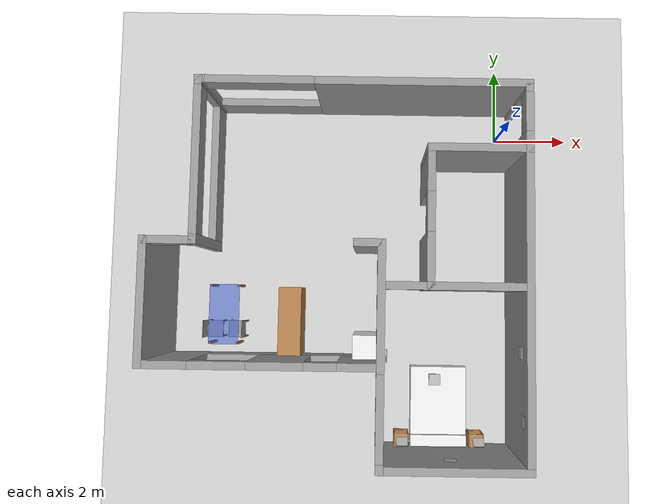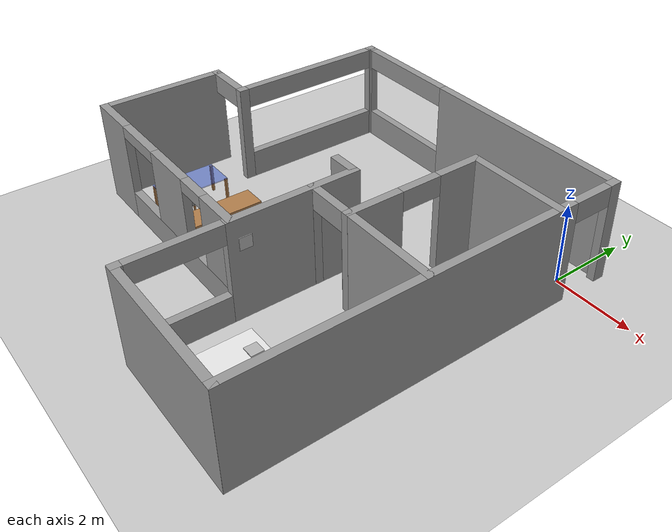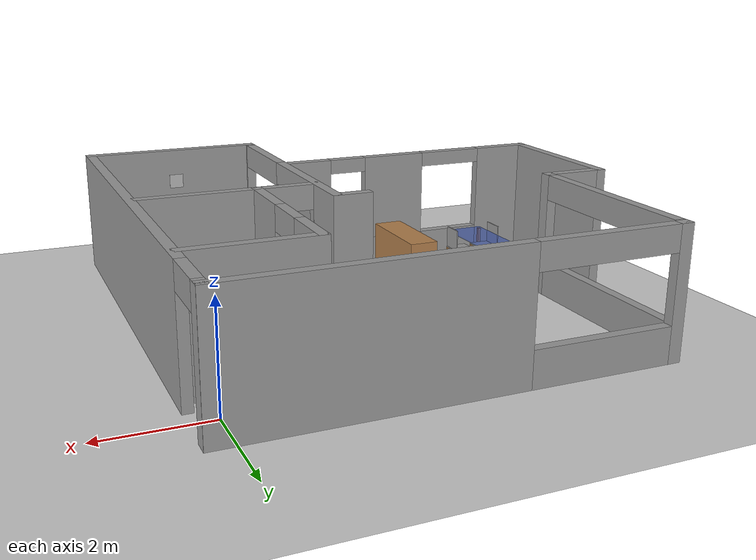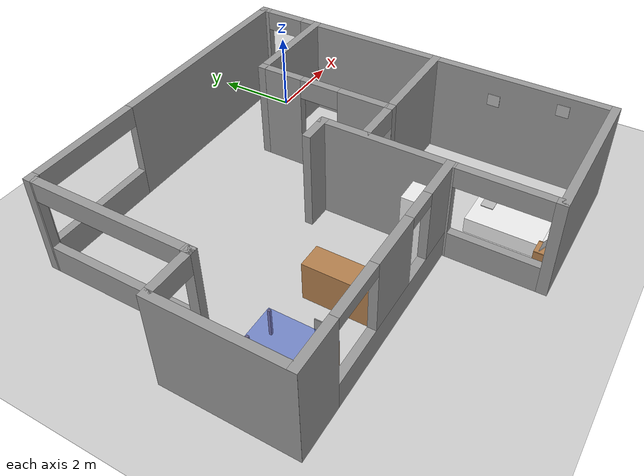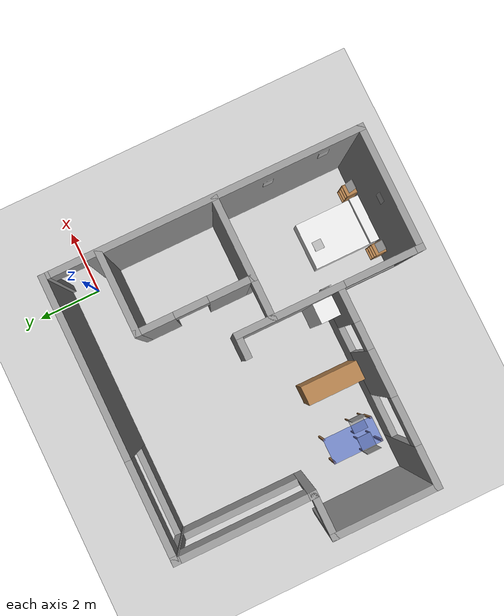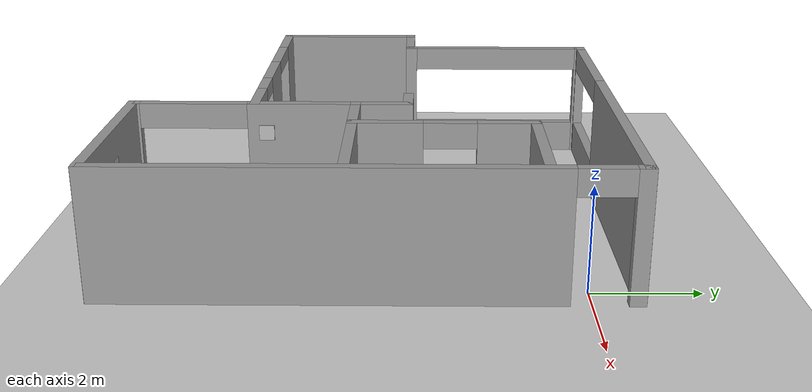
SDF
<sdf version="1.4">
 <world name="GrannyAnnie">
  <model name="ground_plane">
   <static>1</static>
   <link name="link">
    <collision name="collision">
     <geometry><plane><normal>0 0 1</normal><size>100 100</size></plane></geometry>
     <surface><friction><ode><mu>100</mu><mu2>50</mu2></ode></friction></surface>
    </collision>
    <visual name="visual">
     <cast_shadows>0</cast_shadows>
     <geometry><plane><normal>0 0 1</normal><size>100 100</size></plane></geometry>
     <material>
      <script><uri>file://media/materials/scripts/gazebo.material</uri><name>Gazebo/Grey</name></script>
     </material>
    </visual>
    <velocity_decay><linear>0</linear><angular>0</angular></velocity_decay>
   </link>
  </model>
  <model name="tag_1">
   <pose>-2.583000 -8.289000 0.740000 0 -1.03 -1.5708</pose>
   <static>true</static>
   <link name="link">
    <collision name="collision">
     <geometry><box><size>0.300000 0.3000000 0.020000</size></box></geometry>
    </collision>
    <visual name="visual">
     <geometry><box><size>0.300000 0.3000000 0.020000</size></box></geometry>
     <material>
      <script><uri>file://tags_material/scripts/tags.material</uri><name>Tag36_11_00001</name></script>
     </material>
    </visual>
   </link>
   <static>0</static>
  </model>
  <model name="tag_8">
   <pose>0.294000 -5.820000 1.872000 0 -1.5708 0</pose>
   <static>true</static>
   <link name="link">
    <collision name="collision">
     <geometry><box><size>0.300000 0.3000000 0.020000</size></box></geometry>
    </collision>
    <visual name="visual">
     <geometry><box><size>0.300000 0.3000000 0.020000</size></box></geometry>
     <material>
      <script><uri>file://tags_material/scripts/tags.material</uri><name>Tag36_11_00008</name></script>
     </material>
    </visual>
   </link>
   <static>0</static>
  </model>
  <model name="tag_9">
   <pose>-1.435000 -8.478000 1.800000 -1.5708 -1.5708 0</pose>
   <static>true</static>
   <link name="link">
    <collision name="collision">
     <geometry><box><size>0.300000 0.3000000 0.020000</size></box></geometry>
    </collision>
    <visual name="visual">
     <geometry><box><size>0.300000 0.3000000 0.020000</size></box></geometry>
     <material>
      <script><uri>file://tags_material/scripts/tags.material</uri><name>Tag36_11_00009</name></script>
     </material>
    </visual>
   </link>
   <static>0</static>
  </model>
  <model name="tag_18">
   <pose>-1.712 -6.690 0.496 0 0 0</pose>
   <static>true</static>
   <link name="link">
    <collision name="collision">
     <geometry><box><size>0.300000 0.3000000 0.020000</size></box></geometry>
    </collision>
    <visual name="visual">
     <geometry><box><size>0.300000 0.3000000 0.020000</size></box></geometry>
     <material>
      <script><uri>file://tags_material/scripts/tags.material</uri><name>Tag36_11_00018</name></script>
     </material>
    </visual>
   </link>
   <static>0</static>
  </model>
  <model name="tag_19">
   <pose>-3.045 -5.939 1.935 0 -1.5708 0</pose>
   <static>true</static>
   <link name="link">
    <collision name="collision">
     <geometry><box><size>0.300000 0.3000000 0.020000</size></box></geometry>
    </collision>
    <visual name="visual">
     <geometry><box><size>0.300000 0.3000000 0.020000</size></box></geometry>
     <material>
      <script><uri>file://tags_material/scripts/tags.material</uri><name>Tag36_11_00019</name></script>
     </material>
    </visual>
   </link>
   <static>0</static>
  </model>
  <model name="tag_20">
   <pose>0.293 -7.471 2.131 0 -1.5708 0</pose>
   <static>true</static>
   <link name="link">
    <collision name="collision">
     <geometry><box><size>0.300000 0.3000000 0.020000</size></box></geometry>
    </collision>
    <visual name="visual">
     <geometry><box><size>0.300000 0.3000000 0.020000</size></box></geometry>
     <material>
      <script><uri>file://tags_material/scripts/tags.material</uri><name>Tag36_11_00020</name></script>
     </material>
    </visual>
   </link>
   <static>0</static>
  </model>
  <model name="tag_22">
   <pose>-0.559 -8.289 0.74 0 -1.03 -1.5708</pose>
   <static>true</static>
   <link name="link">
    <collision name="collision">
     <geometry><box><size>0.300000 0.3000000 0.020000</size></box></geometry>
    </collision>
    <visual name="visual">
     <geometry><box><size>0.300000 0.3000000 0.020000</size></box></geometry>
     <material>
      <script><uri>file://tags_material/scripts/tags.material</uri><name>Tag36_11_00022</name></script>
     </material>
    </visual>
   </link>
   <static>0</static>
  </model>
  <model name="mesa_comedor">
   <link name="mesa_link">
    <inertial>
     <pose>1.58603e-17 0 0.513571 0 -0 0</pose>
     <mass>7</mass>
     <inertia>
      <ixx>1.28229</ixx>
      <ixy>0</ixy>
      <ixz>5.70179e-17</ixz>
      <iyy>3.10629</iyy>
      <iyz>0</iyz>
      <izz>3.4192</izz>
     </inertia>
    </inertial>
    <collision name="mesa_link_collision">
     <pose>0 0 0.725 0 -0 0</pose>
     <geometry><box><size>1.6 0.8 0.03</size></box></geometry>
     <surface><friction><ode><mu>1</mu><mu2>1</mu2></ode></friction></surface>
    </collision>
    <collision name="mesa_link_collision_pata_1_link">
     <pose>0.77 0.37 0.355 0 -0 0</pose>
     <geometry><box><size>0.06 0.06 0.71</size></box></geometry>
     <surface><friction><ode><mu>1</mu><mu2>1</mu2></ode></friction></surface>
     <surface><friction><ode><mu>1</mu><mu2>1</mu2></ode></friction></surface>
    </collision>
    <collision name="mesa_link_collision_pata_2_link">
     <pose>0.77 -0.37 0.355 0 -0 0</pose>
     <geometry><box><size>0.06 0.06 0.71</size></box></geometry>
     <surface><friction><ode><mu>1</mu><mu2>1</mu2></ode></friction></surface>
     <surface><friction><ode><mu>1</mu><mu2>1</mu2></ode></friction></surface>
    </collision>
    <collision name="mesa_link_collision_pata_3_link">
     <pose>-0.77 -0.37 0.355 0 -0 0</pose>
     <geometry><box><size>0.06 0.06 0.71</size></box></geometry>
     <surface><friction><ode><mu>1</mu><mu2>1</mu2></ode></friction></surface>
     <surface><friction><ode><mu>1</mu><mu2>1</mu2></ode></friction></surface>
    </collision>
    <collision name="mesa_link_collision_pata_4_link">
     <pose>-0.77 0.37 0.355 0 -0 0</pose>
     <geometry><box><size>0.06 0.06 0.71</size></box></geometry>
     <surface><friction><ode><mu>1</mu><mu2>1</mu2></ode></friction></surface>
     <surface><friction><ode><mu>1</mu><mu2>1</mu2></ode></friction></surface>
    </collision>
    <visual name="mesa_link_visual">
     <pose>0 0 0.725 0 -0 0</pose>
     <geometry><box><size>1.6 0.8 0.03</size></box></geometry>
     <material><script><name>Gazebo/BlueTransparent</name><uri>__default__</uri></script></material>
    </visual>
    <visual name="mesa_link_visual_pata_1_link">
     <pose>0.77 0.37 0.355 0 -0 0</pose>
     <geometry><box><size>0.06 0.06 0.71</size></box></geometry>
     <material><script><name>Gazebo/Wood</name><uri>__default__</uri></script></material>
    </visual>
    <visual name="mesa_link_visual_pata_2_link">
     <pose>0.77 -0.37 0.355 0 -0 0</pose>
     <geometry><box><size>0.06 0.06 0.71</size></box></geometry>
     <material><script><name>Gazebo/Wood</name><uri>__default__</uri></script></material>
    </visual>
    <visual name="mesa_link_visual_pata_3_link">
     <pose>-0.77 -0.37 0.355 0 -0 0</pose>
     <geometry><box><size>0.06 0.06 0.71</size></box></geometry>
     <material><script><name>Gazebo/Wood</name><uri>__default__</uri></script></material>
    </visual>
    <visual name="mesa_link_visual_pata_4_link">
     <pose>-0.77 0.37 0.355 0 -0 0</pose>
     <geometry><box><size>0.06 0.06 0.71</size></box></geometry>
     <material><script><name>Gazebo/Wood</name><uri>__default__</uri></script></material>
    </visual>
    <velocity_decay><linear>0</linear><angular>0</angular></velocity_decay>
    <velocity_decay><linear>0</linear><angular>0</angular></velocity_decay>
    <velocity_decay><linear>0</linear><angular>0</angular></velocity_decay>
    <velocity_decay><linear>0</linear><angular>0</angular></velocity_decay>
    <velocity_decay><linear>0</linear><angular>0</angular></velocity_decay>
    <self_collide>1</self_collide>
   </link>
   <pose>-7.4 -5 0 0 -0 1.57</pose>
   <static>0</static>
  </model>
  <model name="RoCKIn@Home">
   <link name="Wall_12">
    <collision name="Wall_12_Collision">
     <geometry><box><size>2.6 0.2 2.5</size></box></geometry>
     <pose>0 0 1.25 0 -0 0</pose>
    </collision>
    <visual name="Wall_12_Visual">
     <pose>0 0 1.25 0 -0 0</pose>
     <geometry><box><size>2.6 0.2 2.5</size></box></geometry>
     <material>
      <script><uri>file://media/materials/scripts/gazebo.material</uri><name>Gazebo/Grey</name></script>
     </material>
    </visual>
    <velocity_decay><linear>0</linear><angular>0</angular></velocity_decay>
    <pose>7.8 1.205 0 0 -0 1.5708</pose>
   </link>
   <link name="Wall_14">
    <pose>6.0996 2.4048 0 0 -0 3.14159</pose>
    <visual name="Wall_14_Visual_0">
     <pose>-1.20789 0 1.25 0 -0 0</pose>
     <geometry><box><size>1.18422 0.2 2.5</size></box></geometry>
     <material>
      <script><uri>file://media/materials/scripts/gazebo.material</uri><name>Gazebo/Grey</name></script>
     </material>
    </visual>
    <collision name="Wall_14_Collision_0">
     <geometry><box><size>1.18422 0.2 2.5</size></box></geometry>
     <pose>-1.20789 0 1.25 0 -0 0</pose>
    </collision>
    <visual name="Wall_14_Visual_1">
     <pose>1.09211 0 1.25 0 -0 0</pose>
     <geometry><box><size>1.41579 0.2 2.5</size></box></geometry>
     <material>
      <script><uri>file://media/materials/scripts/gazebo.material</uri><name>Gazebo/Grey</name></script>
     </material>
    </visual>
    <collision name="Wall_14_Collision_1">
     <geometry><box><size>1.41579 0.2 2.5</size></box></geometry>
     <pose>1.09211 0 1.25 0 -0 0</pose>
    </collision>
    <visual name="Wall_14_Visual_2">
     <pose>-0.115785 0 2.25 0 -0 0</pose>
     <geometry><box><size>1 0.2 0.5</size></box></geometry>
     <material>
      <script><uri>file://media/materials/scripts/gazebo.material</uri><name>Gazebo/Grey</name></script>
     </material>
    </visual>
    <collision name="Wall_14_Collision_2">
     <geometry><box><size>1 0.2 0.5</size></box></geometry>
     <pose>-0.115785 0 2.25 0 -0 0</pose>
    </collision>
    <velocity_decay><linear>0</linear><angular>0</angular></velocity_decay>
   </link>
   <link name="Wall_16">
    <collision name="Wall_16_Collision">
     <geometry><box><size>2.60492 0.2 2.5</size></box></geometry>
     <pose>0 0 1.25 0 -0 0</pose>
    </collision>
    <visual name="Wall_16_Visual">
     <pose>0 0 1.25 0 -0 0</pose>
     <geometry><box><size>2.60492 0.2 2.5</size></box></geometry>
     <material>
      <script><uri>file://media/materials/scripts/gazebo.material</uri><name>Gazebo/Grey</name></script>
     </material>
    </visual>
    <velocity_decay><linear>0</linear><angular>0</angular></velocity_decay>
    <pose>4.39903 1.20277 0 0 -0 1.5708</pose>
   </link>
   <link name="Wall_18">
    <collision name="Wall_18_Collision">
     <geometry><box><size>3.8 0.2 2.5</size></box></geometry>
     <pose>0 0 1.25 0 -0 0</pose>
    </collision>
    <visual name="Wall_18_Visual">
     <pose>0 0 1.25 0 -0 0</pose>
     <geometry><box><size>3.8 0.2 2.5</size></box></geometry>
     <material>
      <script><uri>file://media/materials/scripts/gazebo.material</uri><name>Gazebo/Grey</name></script>
     </material>
    </visual>
    <velocity_decay><linear>0</linear><angular>0</angular></velocity_decay>
    <pose>0.024876 1.80003 0 0 -0 1.5708</pose>
   </link>
   <link name="Wall_2">
    <pose>4.7266 0 0 0 -0 0</pose>
    <visual name="Wall_2_Visual_0">
     <pose>-0.649274 0 1.25 0 -0 0</pose>
     <geometry><box><size>8.30145 0.2 2.5</size></box></geometry>
     <material>
      <script><uri>file://media/materials/scripts/gazebo.material</uri><name>Gazebo/Grey</name></script>
     </material>
    </visual>
    <collision name="Wall_2_Collision_0">
     <geometry><box><size>8.30145 0.2 2.5</size></box></geometry>
     <pose>-0.649274 0 1.25 0 -0 0</pose>
    </collision>
    <visual name="Wall_2_Visual_1">
     <pose>4.65073 0 1.25 0 -0 0</pose>
     <geometry><box><size>0.298547 0.2 2.5</size></box></geometry>
     <material>
      <script><uri>file://media/materials/scripts/gazebo.material</uri><name>Gazebo/Grey</name></script>
     </material>
    </visual>
    <collision name="Wall_2_Collision_1">
     <geometry><box><size>0.298547 0.2 2.5</size></box></geometry>
     <pose>4.65073 0 1.25 0 -0 0</pose>
    </collision>
    <visual name="Wall_2_Visual_2">
     <pose>4.00145 0 2.25 0 -0 0</pose>
     <geometry><box><size>1 0.2 0.5</size></box></geometry>
     <material>
      <script><uri>file://media/materials/scripts/gazebo.material</uri><name>Gazebo/Grey</name></script>
     </material>
    </visual>
    <collision name="Wall_2_Collision_2">
     <geometry><box><size>1 0.2 0.5</size></box></geometry>
     <pose>4.00145 0 2.25 0 -0 0</pose>
    </collision>
    <velocity_decay><linear>0</linear><angular>0</angular></velocity_decay>
   </link>
   <link name="Wall_20">
    <pose>2.72456 3.60059 0 0 -0 0</pose>
    <visual name="Wall_20_Visual_0">
     <pose>-2.67396 0 1.25 0 -0 0</pose>
     <geometry><box><size>0.251208 0.2 2.5</size></box></geometry>
     <material>
      <script><uri>file://media/materials/scripts/gazebo.material</uri><name>Gazebo/Grey</name></script>
     </material>
    </visual>
    <collision name="Wall_20_Collision_0">
     <geometry><box><size>0.251208 0.2 2.5</size></box></geometry>
     <pose>-2.67396 0 1.25 0 -0 0</pose>
    </collision>
    <visual name="Wall_20_Visual_1">
     <pose>1.1766 0 1.25 0 -0 0</pose>
     <geometry><box><size>3.24591 0.2 2.5</size></box></geometry>
     <material>
      <script><uri>file://media/materials/scripts/gazebo.material</uri><name>Gazebo/Grey</name></script>
     </material>
    </visual>
    <collision name="Wall_20_Collision_1">
     <geometry><box><size>3.24591 0.2 2.5</size></box></geometry>
     <pose>1.1766 0 1.25 0 -0 0</pose>
    </collision>
    <visual name="Wall_20_Visual_2">
     <pose>-1.49735 0 2.25 0 -0 0</pose>
     <geometry><box><size>2.102 0.2 0.5</size></box></geometry>
     <material>
      <script><uri>file://media/materials/scripts/gazebo.material</uri><name>Gazebo/Grey</name></script>
     </material>
    </visual>
    <collision name="Wall_20_Collision_2">
     <geometry><box><size>2.102 0.2 0.5</size></box></geometry>
     <pose>-1.49735 0 2.25 0 -0 0</pose>
    </collision>
    <visual name="Wall_20_Visual_3">
     <pose>-1.49735 0 0.35 0 -0 0</pose>
     <geometry><box><size>2.102 0.2 0.7</size></box></geometry>
     <material>
      <script><uri>file://media/materials/scripts/gazebo.material</uri><name>Gazebo/Grey</name></script>
     </material>
    </visual>
    <collision name="Wall_20_Collision_3">
     <geometry><box><size>2.102 0.2 0.3</size></box></geometry>
     <pose>-1.49735 0 0.35 0 -0 0</pose>
    </collision>
    <velocity_decay><linear>0</linear><angular>0</angular></velocity_decay>
   </link>
   <link name="Wall_22">
    <pose>4.39856 3.00206 0 0 -0 1.5708</pose>
    <visual name="Wall_22_Visual_0">
     <pose>-0.601085 0 1.25 0 -0 0</pose>
     <geometry><box><size>0.194709 0.2 2.5</size></box></geometry>
     <material>
      <script><uri>file://media/materials/scripts/gazebo.material</uri><name>Gazebo/Grey</name></script>
     </material>
    </visual>
    <collision name="Wall_22_Collision_0">
     <geometry><box><size>0.194709 0.2 2.5</size></box></geometry>
     <pose>-0.601085 0 1.25 0 -0 0</pose>
    </collision>
    <visual name="Wall_22_Visual_1">
     <pose>0.597355 0 1.25 0 -0 0</pose>
     <geometry><box><size>0.202171 0.2 2.5</size></box></geometry>
     <material>
      <script><uri>file://media/materials/scripts/gazebo.material</uri><name>Gazebo/Grey</name></script>
     </material>
    </visual>
    <collision name="Wall_22_Collision_1">
     <geometry><box><size>0.202171 0.2 2.5</size></box></geometry>
     <pose>0.597355 0 1.25 0 -0 0</pose>
    </collision>
    <visual name="Wall_22_Visual_2">
     <pose>-0.003731 0 2.25 0 -0 0</pose>
     <geometry><box><size>1 0.2 0.5</size></box></geometry>
     <material>
      <script><uri>file://media/materials/scripts/gazebo.material</uri><name>Gazebo/Grey</name></script>
     </material>
    </visual>
    <collision name="Wall_22_Collision_2">
     <geometry><box><size>1 0.2 0.5</size></box></geometry>
     <pose>-0.003731 0 2.25 0 -0 0</pose>
    </collision>
    <velocity_decay><linear>0</linear><angular>0</angular></velocity_decay>
   </link>
   <link name="Wall_24">
    <pose>7.42703 8.20242 0 0 -0 3.14159</pose>
    <visual name="Wall_24_Visual_0">
     <pose>-1.97924 0 1.25 0 -0 0</pose>
     <geometry><box><size>0.241529 0.2 2.5</size></box></geometry>
     <material>
      <script><uri>file://media/materials/scripts/gazebo.material</uri><name>Gazebo/Grey</name></script>
     </material>
    </visual>
    <collision name="Wall_24_Collision_0">
     <geometry><box><size>0.241529 0.2 2.5</size></box></geometry>
     <pose>-1.97924 0 1.25 0 -0 0</pose>
    </collision>
    <visual name="Wall_24_Visual_1">
     <pose>1.97395 0 1.25 0 -0 0</pose>
     <geometry><box><size>0.252091 0.2 2.5</size></box></geometry>
     <material>
      <script><uri>file://media/materials/scripts/gazebo.material</uri><name>Gazebo/Grey</name></script>
     </material>
    </visual>
    <collision name="Wall_24_Collision_1">
     <geometry><box><size>0.252091 0.2 2.5</size></box></geometry>
     <pose>1.97395 0 1.25 0 -0 0</pose>
    </collision>
    <visual name="Wall_24_Visual_2">
     <pose>-0.005281 0 2.25 0 -0 0</pose>
     <geometry><box><size>3.70638 0.2 0.5</size></box></geometry>
     <material>
      <script><uri>file://media/materials/scripts/gazebo.material</uri><name>Gazebo/Grey</name></script>
     </material>
    </visual>
    <collision name="Wall_24_Collision_2">
     <geometry><box><size>3.70638 0.2 0.5</size></box></geometry>
     <pose>-0.005281 0 2.25 0 -0 0</pose>
    </collision>
    <visual name="Wall_24_Visual_3">
     <pose>-0.005281 0 0.35 0 -0 0</pose>
     <geometry><box><size>3.70638 0.2 0.7</size></box></geometry>
     <material>
      <script><uri>file://media/materials/scripts/gazebo.material</uri><name>Gazebo/Grey</name></script>
     </material>
    </visual>
    <collision name="Wall_24_Collision_3">
     <geometry><box><size>3.70638 0.2 0.7</size></box></geometry>
     <pose>-0.005281 0 0.35 0 -0 0</pose>
    </collision>
    <velocity_decay><linear>0</linear><angular>0</angular></velocity_decay>
   </link>
   <link name="Wall_28">
    <collision name="Wall_28_Collision">
     <geometry><box><size>3.2 0.2 2.5</size></box></geometry>
     <pose>0 0 1.25 0 -0 0</pose>
    </collision>
    <visual name="Wall_28_Visual">
     <pose>0 0 1.25 0 -0 0</pose>
     <geometry><box><size>3.2 0.2 2.5</size></box></geometry>
     <material>
      <script><uri>file://media/materials/scripts/gazebo.material</uri><name>Gazebo/Grey</name></script>
     </material>
    </visual>
    <velocity_decay><linear>0</linear><angular>0</angular></velocity_decay>
    <pose>3.92571 9.40229 0 0 -0 3.14159</pose>
   </link>
   <link name="Wall_30">
    <pose>2.42541 6.50159 0 0 0 -1.5708</pose>
    <visual name="Wall_30_Visual_0">
     <pose>-2.363 0 1.25 0 -0 0</pose>
     <geometry><box><size>1.27269 0.2 2.5</size></box></geometry>
     <material>
      <script><uri>file://media/materials/scripts/gazebo.material</uri><name>Gazebo/Grey</name></script>
     </material>
    </visual>
    <collision name="Wall_30_Collision_0">
     <geometry><box><size>1.27269 0.2 2.5</size></box></geometry>
     <pose>-2.363 0 1.25 0 -0 0</pose>
    </collision>
    <visual name="Wall_30_Visual_1">
     <pose>0.636346 0 0.35 0 -0 0</pose>
     <geometry><box><size>4.726 0.2 0.7</size></box></geometry>
     <material>
      <script><uri>file://media/materials/scripts/gazebo.material</uri><name>Gazebo/Grey</name></script>
     </material>
    </visual>
    <collision name="Wall_30_Collision_1">
     <geometry><box><size>4.726 0.2 0.7</size></box></geometry>
     <pose>0.636346 0 0.35 0 -0 0</pose>
    </collision>
    <visual name="Wall_30_Visual_2">
     <pose>0.36359 0 1.6 0 -0 0</pose>
     <geometry><box><size>1.38049 0.2 1.8</size></box></geometry>
     <material>
      <script><uri>file://media/materials/scripts/gazebo.material</uri><name>Gazebo/Grey</name></script>
     </material>
    </visual>
    <collision name="Wall_30_Collision_2">
     <geometry><box><size>1.38049 0.2 1.8</size></box></geometry>
     <pose>0.36359 0 1.6 0 -0 0</pose>
    </collision>
    <visual name="Wall_30_Visual_3">
     <pose>2.42659 0 1.6 0 -0 0</pose>
     <geometry><box><size>1.14551 0.2 1.8</size></box></geometry>
     <material>
      <script><uri>file://media/materials/scripts/gazebo.material</uri><name>Gazebo/Grey</name></script>
     </material>
    </visual>
    <collision name="Wall_30_Collision_3">
     <geometry><box><size>1.14551 0.2 1.8</size></box></geometry>
     <pose>2.42659 0 1.6 0 -0 0</pose>
    </collision>
    <visual name="Wall_30_Visual_4">
     <pose>-1.02665 0 2.35 0 -0 0</pose>
     <geometry><box><size>1.4 0.2 0.3</size></box></geometry>
     <material>
      <script><uri>file://media/materials/scripts/gazebo.material</uri><name>Gazebo/Grey</name></script>
     </material>
    </visual>
    <collision name="Wall_30_Collision_4">
     <geometry><box><size>1.4 0.2 0.3</size></box></geometry>
     <pose>-1.02665 0 2.35 0 -0 0</pose>
    </collision>
    <visual name="Wall_30_Visual_5">
     <pose>1.45383 0 2.35 0 -0 0</pose>
     <geometry><box><size>0.8 0.2 0.3</size></box></geometry>
     <material>
      <script><uri>file://media/materials/scripts/gazebo.material</uri><name>Gazebo/Grey</name></script>
     </material>
    </visual>
    <collision name="Wall_30_Collision_5">
     <geometry><box><size>0.8 0.2 0.3</size></box></geometry>
     <pose>1.45383 0 2.35 0 -0 0</pose>
    </collision>
    <velocity_decay><linear>0</linear><angular>0</angular></velocity_decay>
   </link>
   <link name="Wall_32">
    <pose>5.42654 8.80216 0 0 0 -1.5708</pose>
    <visual name="Wall_32_Visual_0">
     <pose>-0.599775 0 1.25 0 -0 0</pose>
     <geometry><box><size>0.199231 0.2 2.5</size></box></geometry>
     <material>
      <script><uri>file://media/materials/scripts/gazebo.material</uri><name>Gazebo/Grey</name></script>
     </material>
    </visual>
    <collision name="Wall_32_Collision_0">
     <geometry><box><size>0.199231 0.2 2.5</size></box></geometry>
     <pose>-0.599775 0 1.25 0 -0 0</pose>
    </collision>
    <visual name="Wall_32_Visual_1">
     <pose>0.599615 0 1.25 0 -0 0</pose>
     <geometry><box><size>0.199549 0.2 2.5</size></box></geometry>
     <material>
      <script><uri>file://media/materials/scripts/gazebo.material</uri><name>Gazebo/Grey</name></script>
     </material>
    </visual>
    <collision name="Wall_32_Collision_1">
     <geometry><box><size>0.199549 0.2 2.5</size></box></geometry>
     <pose>0.599615 0 1.25 0 -0 0</pose>
    </collision>
    <visual name="Wall_32_Visual_2">
     <pose>-0.000159 0 2.25 0 -0 0</pose>
     <geometry><box><size>1 0.2 0.5</size></box></geometry>
     <material>
      <script><uri>file://media/materials/scripts/gazebo.material</uri><name>Gazebo/Grey</name></script>
     </material>
    </visual>
    <collision name="Wall_32_Collision_2">
     <geometry><box><size>1 0.2 0.5</size></box></geometry>
     <pose>-0.000159 0 2.25 0 -0 0</pose>
    </collision>
    <velocity_decay><linear>0</linear><angular>0</angular></velocity_decay>
   </link>
   <link name="Wall_35">
    <collision name="Wall_35_Collision">
     <geometry><box><size>0.8 0.2 2.5</size></box></geometry>
     <pose>0 0 1.25 0 -0 0</pose>
    </collision>
    <visual name="Wall_35_Visual">
     <pose>0 0 1.25 0 -0 0</pose>
     <geometry><box><size>0.8 0.2 2.5</size></box></geometry>
     <material>
      <script><uri>file://media/materials/scripts/gazebo.material</uri><name>Gazebo/Grey</name></script>
     </material>
    </visual>
    <velocity_decay><linear>0</linear><angular>0</angular></velocity_decay>
    <pose>5.42451 3.90082 0 0 -0 1.5708</pose>
   </link>
   <link name="Wall_8">
    <pose>9.42875 4.1026 0 0 -0 1.5708</pose>
    <visual name="Wall_8_Visual_0">
     <pose>-1.48935 0 1.25 0 -0 0</pose>
     <geometry><box><size>5.42201 0.2 2.5</size></box></geometry>
     <material>
      <script><uri>file://media/materials/scripts/gazebo.material</uri><name>Gazebo/Grey</name></script>
     </material>
    </visual>
    <collision name="Wall_8_Collision_0">
     <geometry><box><size>5.42201 0.2 2.5</size></box></geometry>
     <pose>-1.48935 0 1.25 0 -0 0</pose>
    </collision>
    <visual name="Wall_8_Visual_1">
     <pose>4.07465 0 1.25 0 -0 0</pose>
     <geometry><box><size>0.251416 0.2 2.5</size></box></geometry>
     <material>
      <script><uri>file://media/materials/scripts/gazebo.material</uri><name>Gazebo/Grey</name></script>
     </material>
    </visual>
    <collision name="Wall_8_Collision_1">
     <geometry><box><size>0.251416 0.2 2.5</size></box></geometry>
     <pose>4.07465 0 1.25 0 -0 0</pose>
    </collision>
    <visual name="Wall_8_Visual_2">
     <pose>2.5853 0 2.25 0 -0 0</pose>
     <geometry><box><size>2.72728 0.2 0.5</size></box></geometry>
     <material>
      <script><uri>file://media/materials/scripts/gazebo.material</uri><name>Gazebo/Grey</name></script>
     </material>
    </visual>
    <collision name="Wall_8_Collision_2">
     <geometry><box><size>2.72728 0.2 0.5</size></box></geometry>
     <pose>2.5853 0 2.25 0 -0 0</pose>
    </collision>
    <visual name="Wall_8_Visual_3">
     <pose>2.5853 0 0.35 0 -0 0</pose>
     <geometry><box><size>2.72728 0.2 0.7</size></box></geometry>
     <material>
      <script><uri>file://media/materials/scripts/gazebo.material</uri><name>Gazebo/Grey</name></script>
     </material>
    </visual>
    <collision name="Wall_8_Collision_3">
     <geometry><box><size>2.72728 0.2 0.7</size></box></geometry>
     <pose>2.5853 0 0.35 0 -0 0</pose>
    </collision>
    <velocity_decay><linear>0</linear><angular>0</angular></velocity_decay>
   </link>
   <static>1</static>
   <pose>0.4 -8.6 0 0 -0 1.57</pose>
  </model>
  <model name="silla_1">
   <link name="silla_link">
    <inertial>
     <pose>0.0215 0 0.353 0 -0 0</pose>
     <mass>2</mass>
     <inertia>
      <ixx>0.674432</ixx>
      <ixy>0</ixy>
      <ixz>-0.012986</ixz>
      <iyy>0.682753</iyy>
      <iyz>0</iyz>
      <izz>0.675561</izz>
     </inertia>
    </inertial>
    <collision name="silla_link_collision">
     <pose>0 0 0.415 0 -0 0</pose>
     <geometry><box><size>0.45 0.45 0.03</size></box></geometry>
     <surface><friction><ode><mu>1</mu><mu2>1</mu2></ode></friction></surface>
    </collision>
    <collision name="silla_link_collision_pata_1_link">
     <pose>0.205 0.205 0.2 0 -0 0</pose>
     <geometry><box><size>0.04 0.04 0.4</size></box></geometry>
     <surface><friction><ode><mu>1</mu><mu2>1</mu2></ode></friction></surface>
     <surface><friction><ode><mu>1</mu><mu2>1</mu2></ode></friction></surface>
    </collision>
    <collision name="silla_link_collision_pata_2_link">
     <pose>0.205 -0.205 0.2 0 -0 0</pose>
     <geometry><box><size>0.04 0.04 0.4</size></box></geometry>
     <surface><friction><ode><mu>1</mu><mu2>1</mu2></ode></friction></surface>
     <surface><friction><ode><mu>1</mu><mu2>1</mu2></ode></friction></surface>
    </collision>
    <collision name="silla_link_collision_pata_3_link">
     <pose>-0.205 -0.205 0.2 0 -0 0</pose>
     <geometry><box><size>0.04 0.04 0.4</size></box></geometry>
     <surface><friction><ode><mu>1</mu><mu2>1</mu2></ode></friction></surface>
     <surface><friction><ode><mu>1</mu><mu2>1</mu2></ode></friction></surface>
    </collision>
    <collision name="silla_link_collision_pata_4_link">
     <pose>-0.205 0.205 0.2 0 -0 0</pose>
     <geometry><box><size>0.04 0.04 0.4</size></box></geometry>
     <surface><friction><ode><mu>1</mu><mu2>1</mu2></ode></friction></surface>
     <surface><friction><ode><mu>1</mu><mu2>1</mu2></ode></friction></surface>
    </collision>
    <collision name="silla_link_collision_respaldo_link">
     <pose>0.215 0 0.655 0 -0 0</pose>
     <geometry><box><size>0.02 0.45 0.45</size></box></geometry>
     <surface><friction><ode><mu>1</mu><mu2>1</mu2></ode></friction></surface>
     <surface><friction><ode><mu>1</mu><mu2>1</mu2></ode></friction></surface>
    </collision>
    <visual name="silla_link_visual">
     <pose>0 0 0.415 0 -0 0</pose>
     <geometry><box><size>0.45 0.45 0.03</size></box></geometry>
     <material><script><name>Gazebo/Grey</name><uri>__default__</uri></script></material>
    </visual>
    <visual name="silla_link_visual_pata_1_link">
     <pose>0.205 0.205 0.2 0 -0 0</pose>
     <geometry><box><size>0.04 0.04 0.4</size></box></geometry>
     <material><script><name>Gazebo/Wood</name><uri>__default__</uri></script></material>
    </visual>
    <visual name="silla_link_visual_pata_2_link">
     <pose>0.205 -0.205 0.2 0 -0 0</pose>
     <geometry><box><size>0.04 0.04 0.4</size></box></geometry>
     <material><script><name>Gazebo/Wood</name><uri>__default__</uri></script></material>
    </visual>
    <visual name="silla_link_visual_pata_3_link">
     <pose>-0.205 -0.205 0.2 0 -0 0</pose>
     <geometry><box><size>0.04 0.04 0.4</size></box></geometry>
     <material><script><name>Gazebo/Wood</name><uri>__default__</uri></script></material>
    </visual>
    <visual name="silla_link_visual_pata_4_link">
     <pose>-0.205 0.205 0.2 0 -0 0</pose>
     <geometry><box><size>0.04 0.04 0.4</size></box></geometry>
     <material><script><name>Gazebo/Wood</name><uri>__default__</uri></script></material>
    </visual>
    <visual name="silla_link_visual_respaldo_link">
     <pose>0.215 0 0.655 0 -0 0</pose>
     <geometry><box><size>0.02 0.45 0.45</size></box></geometry>
     <material><script><name>Gazebo/Grey</name><uri>__default__</uri></script></material>
    </visual>
    <velocity_decay><linear>0</linear><angular>0</angular></velocity_decay>
    <velocity_decay><linear>0</linear><angular>0</angular></velocity_decay>
    <velocity_decay><linear>0</linear><angular>0</angular></velocity_decay>
    <velocity_decay><linear>0</linear><angular>0</angular></velocity_decay>
    <velocity_decay><linear>0</linear><angular>0</angular></velocity_decay>
    <velocity_decay><linear>0</linear><angular>0</angular></velocity_decay>
    <self_collide>1</self_collide>
   </link>
   <pose>-7.1 -5.4 0 0 -0 0</pose>
   <static>0</static>
  </model>
  <model name="silla_3">
   <link name="silla_link">
    <inertial>
     <pose>0.0215 0 0.353 0 -0 0</pose>
     <mass>2</mass>
     <inertia>
      <ixx>0.674432</ixx>
      <ixy>0</ixy>
      <ixz>-0.012986</ixz>
      <iyy>0.682753</iyy>
      <iyz>0</iyz>
      <izz>0.675561</izz>
     </inertia>
    </inertial>
    <collision name="silla_link_collision">
     <pose>0 0 0.415 0 -0 0</pose>
     <geometry><box><size>0.45 0.45 0.03</size></box></geometry>
     <surface><friction><ode><mu>1</mu><mu2>1</mu2></ode></friction></surface>
    </collision>
    <collision name="silla_link_collision_pata_1_link">
     <pose>0.205 0.205 0.2 0 -0 0</pose>
     <geometry><box><size>0.04 0.04 0.4</size></box></geometry>
     <surface><friction><ode><mu>1</mu><mu2>1</mu2></ode></friction></surface>
     <surface><friction><ode><mu>1</mu><mu2>1</mu2></ode></friction></surface>
    </collision>
    <collision name="silla_link_collision_pata_2_link">
     <pose>0.205 -0.205 0.2 0 -0 0</pose>
     <geometry><box><size>0.04 0.04 0.4</size></box></geometry>
     <surface><friction><ode><mu>1</mu><mu2>1</mu2></ode></friction></surface>
     <surface><friction><ode><mu>1</mu><mu2>1</mu2></ode></friction></surface>
    </collision>
    <collision name="silla_link_collision_pata_3_link">
     <pose>-0.205 -0.205 0.2 0 -0 0</pose>
     <geometry><box><size>0.04 0.04 0.4</size></box></geometry>
     <surface><friction><ode><mu>1</mu><mu2>1</mu2></ode></friction></surface>
     <surface><friction><ode><mu>1</mu><mu2>1</mu2></ode></friction></surface>
    </collision>
    <collision name="silla_link_collision_pata_4_link">
     <pose>-0.205 0.205 0.2 0 -0 0</pose>
     <geometry><box><size>0.04 0.04 0.4</size></box></geometry>
     <surface><friction><ode><mu>1</mu><mu2>1</mu2></ode></friction></surface>
     <surface><friction><ode><mu>1</mu><mu2>1</mu2></ode></friction></surface>
    </collision>
    <collision name="silla_link_collision_respaldo_link">
     <pose>0.215 0 0.655 0 -0 0</pose>
     <geometry><box><size>0.02 0.45 0.45</size></box></geometry>
     <surface><friction><ode><mu>1</mu><mu2>1</mu2></ode></friction></surface>
     <surface><friction><ode><mu>1</mu><mu2>1</mu2></ode></friction></surface>
    </collision>
    <visual name="silla_link_visual">
     <pose>0 0 0.415 0 -0 0</pose>
     <geometry><box><size>0.45 0.45 0.03</size></box></geometry>
     <material><script><name>Gazebo/Grey</name><uri>__default__</uri></script></material>
    </visual>
    <visual name="silla_link_visual_pata_1_link">
     <pose>0.205 0.205 0.2 0 -0 0</pose>
     <geometry><box><size>0.04 0.04 0.4</size></box></geometry>
     <material><script><name>Gazebo/Wood</name><uri>__default__</uri></script></material>
    </visual>
    <visual name="silla_link_visual_pata_2_link">
     <pose>0.205 -0.205 0.2 0 -0 0</pose>
     <geometry><box><size>0.04 0.04 0.4</size></box></geometry>
     <material><script><name>Gazebo/Wood</name><uri>__default__</uri></script></material>
    </visual>
    <visual name="silla_link_visual_pata_3_link">
     <pose>-0.205 -0.205 0.2 0 -0 0</pose>
     <geometry><box><size>0.04 0.04 0.4</size></box></geometry>
     <material><script><name>Gazebo/Wood</name><uri>__default__</uri></script></material>
    </visual>
    <visual name="silla_link_visual_pata_4_link">
     <pose>-0.205 0.205 0.2 0 -0 0</pose>
     <geometry><box><size>0.04 0.04 0.4</size></box></geometry>
     <material><script><name>Gazebo/Wood</name><uri>__default__</uri></script></material>
    </visual>
    <visual name="silla_link_visual_respaldo_link">
     <pose>0.215 0 0.655 0 -0 0</pose>
     <geometry><box><size>0.02 0.45 0.45</size></box></geometry>
     <material><script><name>Gazebo/Grey</name><uri>__default__</uri></script></material>
    </visual>
    <velocity_decay><linear>0</linear><angular>0</angular></velocity_decay>
    <velocity_decay><linear>0</linear><angular>0</angular></velocity_decay>
    <velocity_decay><linear>0</linear><angular>0</angular></velocity_decay>
    <velocity_decay><linear>0</linear><angular>0</angular></velocity_decay>
    <velocity_decay><linear>0</linear><angular>0</angular></velocity_decay>
    <velocity_decay><linear>0</linear><angular>0</angular></velocity_decay>
    <self_collide>1</self_collide>
   </link>
   <pose>-7.7 -5.4 0 0 -0 3.14</pose>
   <static>0</static>
  </model>
  <model name="barra">
   <link name="barra_link">
    <inertial>
     <pose>0 0 0.5 0 -0 0</pose>
     <mass>50</mass>
     <inertia><ixx>5</ixx><ixy>0</ixy><ixz>0</ixz><iyy>5</iyy><iyz>0</iyz><izz>5</izz></inertia>
    </inertial>
    <collision name="barra_link_collision">
     <pose>0 0 0.5 0 -0 0</pose>
     <geometry><box><size>1.8 0.6 1</size></box></geometry>
     <surface><friction><ode><mu>1</mu><mu2>1</mu2></ode></friction></surface>
    </collision>
    <visual name="barra_link_visual">
     <pose>0 0 0.5 0 -0 0</pose>
     <geometry><box><size>1.8 0.6 1</size></box></geometry>
     <material><script><name>Gazebo/Wood</name><uri>__default__</uri></script></material>
    </visual>
    <velocity_decay><linear>0</linear><angular>0</angular></velocity_decay>
    <self_collide>1</self_collide>
   </link>
   <pose>-5.6 -5.16 0 0 -0 1.57</pose>
   <static>0</static>
  </model>
  <model name="frigo">
   <link name="frigo_link">
    <inertial>
     <pose>0 0 0.9 0 -0 0</pose>
     <mass>50</mass>
     <inertia><ixx>5</ixx><ixy>0</ixy><ixz>0</ixz><iyy>5</iyy><iyz>0</iyz><izz>5</izz></inertia>
    </inertial>
    <collision name="frigo_link_collision">
     <pose>0 0 0.9 0 -0 0</pose>
     <geometry><box><size>0.6 0.6 1.8</size></box></geometry>
     <surface><friction><ode><mu>1</mu><mu2>1</mu2></ode></friction></surface>
    </collision>
    <visual name="frigo_link_visual">
     <pose>0 0 0.9 0 -0 0</pose>
     <geometry><box><size>0.6 0.6 1.8</size></box></geometry>
     <material><script><name>Gazebo/White</name><uri>__default__</uri></script></material>
    </visual>
    <velocity_decay><linear>0</linear><angular>0</angular></velocity_decay>
    <self_collide>1</self_collide>
   </link>
   <pose>-3.6 -5.75 0 0 -0 0</pose>
   <static>0</static>
  </model>
  <model name="mesita_1">
   <link name="mesita_link">
    <inertial>
     <pose>0 0 0.2975 0 -0 0</pose>
     <mass>8</mass>
     <inertia><ixx>0.24835</ixx><ixy>0</ixy><ixz>0</ixz><iyy>0.38525</iyy><iyz>0</iyz><izz>0.1969</izz></inertia>
    </inertial>
    <collision name="mesita_link_collision">
     <pose>0 0 0.01 0 -0 0</pose>
     <geometry><box><size>0.35 0.35 0.02</size></box></geometry>
     <surface><friction><ode><mu>1</mu><mu2>1</mu2></ode></friction></surface>
    </collision>
    <collision name="mesita_link_collision_basal_1_link">
     <pose>0 0 0.19 0 -0 0</pose>
     <geometry><box><size>0.35 0.35 0.02</size></box></geometry>
     <surface><friction><ode><mu>1</mu><mu2>1</mu2></ode></friction></surface>
     <surface><friction><ode><mu>1</mu><mu2>1</mu2></ode></friction></surface>
    </collision>
    <collision name="mesita_link_collision_basal_2_link">
     <pose>0 0 0.39 0 -0 0</pose>
     <geometry><box><size>0.35 0.35 0.02</size></box></geometry>
     <surface><friction><ode><mu>1</mu><mu2>1</mu2></ode></friction></surface>
     <surface><friction><ode><mu>1</mu><mu2>1</mu2></ode></friction></surface>
    </collision>
    <collision name="mesita_link_collision_basal_3_link">
     <pose>0 0 0.59 0 -0 0</pose>
     <geometry><box><size>0.35 0.35 0.02</size></box></geometry>
     <surface><friction><ode><mu>1</mu><mu2>1</mu2></ode></friction></surface>
     <surface><friction><ode><mu>1</mu><mu2>1</mu2></ode></friction></surface>
    </collision>
    <collision name="mesita_link_collision_lateral_1_link">
     <pose>0.185 0 0.3 0 -0 0</pose>
     <geometry><box><size>0.02 0.35 0.6</size></box></geometry>
     <surface><friction><ode><mu>1</mu><mu2>1</mu2></ode></friction></surface>
     <surface><friction><ode><mu>1</mu><mu2>1</mu2></ode></friction></surface>
    </collision>
    <collision name="mesita_link_collision_lateral_2_link">
     <pose>-0.185 0 0.3 0 -0 0</pose>
     <geometry><box><size>0.02 0.35 0.6</size></box></geometry>
     <surface><friction><ode><mu>1</mu><mu2>1</mu2></ode></friction></surface>
     <surface><friction><ode><mu>1</mu><mu2>1</mu2></ode></friction></surface>
    </collision>
    <visual name="mesita_link_visual">
     <pose>0 0 0.01 0 -0 0</pose>
     <geometry><box><size>0.35 0.35 0.02</size></box></geometry>
     <material><script><name>Gazebo/Wood</name><uri>__default__</uri></script></material>
    </visual>
    <visual name="mesita_link_visual_basal_1_link">
     <pose>0 0 0.19 0 -0 0</pose>
     <geometry><box><size>0.35 0.35 0.02</size></box></geometry>
     <material><script><name>Gazebo/Wood</name><uri>__default__</uri></script></material>
    </visual>
    <visual name="mesita_link_visual_basal_2_link">
     <pose>0 0 0.39 0 -0 0</pose>
     <geometry><box><size>0.35 0.35 0.02</size></box></geometry>
     <material><script><name>Gazebo/Wood</name><uri>__default__</uri></script></material>
    </visual>
    <visual name="mesita_link_visual_basal_3_link">
     <pose>0 0 0.59 0 -0 0</pose>
     <geometry><box><size>0.35 0.35 0.02</size></box></geometry>
     <material><script><name>Gazebo/Wood</name><uri>__default__</uri></script></material>
    </visual>
    <visual name="mesita_link_visual_lateral_1_link">
     <pose>0.185 0 0.3 0 -0 0</pose>
     <geometry><box><size>0.02 0.35 0.6</size></box></geometry>
     <material><script><name>Gazebo/Wood</name><uri>__default__</uri></script></material>
    </visual>
    <visual name="mesita_link_visual_lateral_2_link">
     <pose>-0.185 0 0.3 0 -0 0</pose>
     <geometry><box><size>0.02 0.35 0.6</size></box></geometry>
     <material><script><name>Gazebo/Wood</name><uri>__default__</uri></script></material>
    </visual>
    <velocity_decay><linear>0</linear><angular>0</angular></velocity_decay>
    <velocity_decay><linear>0</linear><angular>0</angular></velocity_decay>
    <velocity_decay><linear>0</linear><angular>0</angular></velocity_decay>
    <velocity_decay><linear>0</linear><angular>0</angular></velocity_decay>
    <velocity_decay><linear>0</linear><angular>0</angular></velocity_decay>
    <velocity_decay><linear>0</linear><angular>0</angular></velocity_decay>
    <self_collide>1</self_collide>
   </link>
   <pose>-2.6 -8.28 0 0 -0 0</pose>
   <static>0</static>
  </model>
  <model name="cama">
   <link name="cama_link">
    <inertial>
     <pose>0.0176471 0 0.204902 0 -0 0</pose>
     <mass>51</mass>
     <inertia>
      <ixx>10.1613</ixx>
      <ixy>0</ixy>
      <ixz>-0.220588</ixz>
      <iyy>10.9554</iyy>
      <iyz>0</iyz>
      <izz>10.8941</izz>
     </inertia>
    </inertial>
    <collision name="cama_link_collision">
     <pose>0 0 0.2 0 -0 0</pose>
     <geometry><box><size>2.1 1.5 0.4</size></box></geometry>
     <surface><friction><ode><mu>1</mu><mu2>1</mu2></ode></friction></surface>
    </collision>
    <collision name="cama_link_collision_almohada_link">
     <pose>0.9 0 0.45 0 -0 0</pose>
     <geometry><box><size>0.3 1.5 0.1</size></box></geometry>
     <surface><friction><ode><mu>1</mu><mu2>1</mu2></ode></friction></surface>
     <surface><friction><ode><mu>1</mu><mu2>1</mu2></ode></friction></surface>
    </collision>
    <visual name="cama_link_visual">
     <pose>0 0 0.2 0 -0 0</pose>
     <geometry><box><size>2.1 1.5 0.4</size></box></geometry>
     <material><script><name>Gazebo/White</name><uri>__default__</uri></script></material>
    </visual>
    <visual name="cama_link_visual_almohada_link">
     <pose>0.9 0 0.45 0 -0 0</pose>
     <geometry><box><size>0.3 1.5 0.1</size></box></geometry>
     <material><script><name>Gazebo/White</name><uri>__default__</uri></script></material>
    </visual>
    <velocity_decay><linear>0</linear><angular>0</angular></velocity_decay>
    <velocity_decay><linear>0</linear><angular>0</angular></velocity_decay>
    <self_collide>1</self_collide>
   </link>
   <pose>-1.6 -7.41 0 0 0 -1.57</pose>
   <static>0</static>
  </model>
  <model name="mesita_2">
   <link name="mesita_link">
    <inertial>
     <pose>0 0 0.2975 0 -0 0</pose>
     <mass>8</mass>
     <inertia><ixx>0.24835</ixx><ixy>0</ixy><ixz>0</ixz><iyy>0.38525</iyy><iyz>0</iyz><izz>0.1969</izz></inertia>
    </inertial>
    <collision name="mesita_link_collision">
     <pose>0 0 0.01 0 -0 0</pose>
     <geometry><box><size>0.35 0.35 0.02</size></box></geometry>
     <surface><friction><ode><mu>1</mu><mu2>1</mu2></ode></friction></surface>
    </collision>
    <collision name="mesita_link_collision_basal_1_link">
     <pose>0 0 0.19 0 -0 0</pose>
     <geometry><box><size>0.35 0.35 0.02</size></box></geometry>
     <surface><friction><ode><mu>1</mu><mu2>1</mu2></ode></friction></surface>
     <surface><friction><ode><mu>1</mu><mu2>1</mu2></ode></friction></surface>
    </collision>
    <collision name="mesita_link_collision_basal_2_link">
     <pose>0 0 0.39 0 -0 0</pose>
     <geometry><box><size>0.35 0.35 0.02</size></box></geometry>
     <surface><friction><ode><mu>1</mu><mu2>1</mu2></ode></friction></surface>
     <surface><friction><ode><mu>1</mu><mu2>1</mu2></ode></friction></surface>
    </collision>
    <collision name="mesita_link_collision_basal_3_link">
     <pose>0 0 0.59 0 -0 0</pose>
     <geometry><box><size>0.35 0.35 0.02</size></box></geometry>
     <surface><friction><ode><mu>1</mu><mu2>1</mu2></ode></friction></surface>
     <surface><friction><ode><mu>1</mu><mu2>1</mu2></ode></friction></surface>
    </collision>
    <collision name="mesita_link_collision_lateral_1_link">
     <pose>0.185 0 0.3 0 -0 0</pose>
     <geometry><box><size>0.02 0.35 0.6</size></box></geometry>
     <surface><friction><ode><mu>1</mu><mu2>1</mu2></ode></friction></surface>
     <surface><friction><ode><mu>1</mu><mu2>1</mu2></ode></friction></surface>
    </collision>
    <collision name="mesita_link_collision_lateral_2_link">
     <pose>-0.185 0 0.3 0 -0 0</pose>
     <geometry><box><size>0.02 0.35 0.6</size></box></geometry>
     <surface><friction><ode><mu>1</mu><mu2>1</mu2></ode></friction></surface>
     <surface><friction><ode><mu>1</mu><mu2>1</mu2></ode></friction></surface>
    </collision>
    <visual name="mesita_link_visual">
     <pose>0 0 0.01 0 -0 0</pose>
     <geometry><box><size>0.35 0.35 0.02</size></box></geometry>
     <material><script><name>Gazebo/Wood</name><uri>__default__</uri></script></material>
    </visual>
    <visual name="mesita_link_visual_basal_1_link">
     <pose>0 0 0.19 0 -0 0</pose>
     <geometry><box><size>0.35 0.35 0.02</size></box></geometry>
     <material><script><name>Gazebo/Wood</name><uri>__default__</uri></script></material>
    </visual>
    <visual name="mesita_link_visual_basal_2_link">
     <pose>0 0 0.39 0 -0 0</pose>
     <geometry><box><size>0.35 0.35 0.02</size></box></geometry>
     <material><script><name>Gazebo/Wood</name><uri>__default__</uri></script></material>
    </visual>
    <visual name="mesita_link_visual_basal_3_link">
     <pose>0 0 0.59 0 -0 0</pose>
     <geometry><box><size>0.35 0.35 0.02</size></box></geometry>
     <material><script><name>Gazebo/Wood</name><uri>__default__</uri></script></material>
    </visual>
    <visual name="mesita_link_visual_lateral_1_link">
     <pose>0.185 0 0.3 0 -0 0</pose>
     <geometry><box><size>0.02 0.35 0.6</size></box></geometry>
     <material><script><name>Gazebo/Wood</name><uri>__default__</uri></script></material>
    </visual>
    <visual name="mesita_link_visual_lateral_2_link">
     <pose>-0.185 0 0.3 0 -0 0</pose>
     <geometry><box><size>0.02 0.35 0.6</size></box></geometry>
     <material><script><name>Gazebo/Wood</name><uri>__default__</uri></script></material>
    </visual>
    <velocity_decay><linear>0</linear><angular>0</angular></velocity_decay>
    <velocity_decay><linear>0</linear><angular>0</angular></velocity_decay>
    <velocity_decay><linear>0</linear><angular>0</angular></velocity_decay>
    <velocity_decay><linear>0</linear><angular>0</angular></velocity_decay>
    <velocity_decay><linear>0</linear><angular>0</angular></velocity_decay>
    <velocity_decay><linear>0</linear><angular>0</angular></velocity_decay>
    <self_collide>1</self_collide>
   </link>
   <pose>-0.6 -8.28 0 0 -0 0</pose>
   <static>0</static>
  </model>
 </world>
</sdf>
